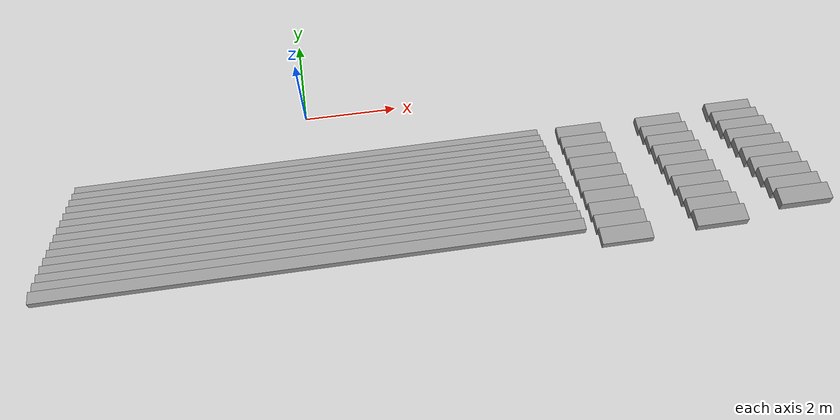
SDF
<sdf version="1.7">
 <world name="default">
  <model name="ground_plane">
   <static>1</static>
   <link name="link">
    <collision name="collision">
     <geometry><plane><normal>0 0 1</normal><size>100 100</size></plane></geometry>
     <surface>
      <contact><collide_bitmask>65535</collide_bitmask></contact>
      <friction><ode><mu>100</mu><mu2>50</mu2></ode></friction>
     </surface>
    </collision>
    <visual name="visual">
     <cast_shadows>0</cast_shadows>
     <geometry><plane><normal>0 0 1</normal><size>100 100</size></plane></geometry>
     <material>
      <script><uri>file://media/materials/scripts/gazebo.material</uri><name>Gazebo/Grey</name></script>
     </material>
    </visual>
   </link>
  </model>
  <model name="Untitled">
   <pose>0.01 -2.3 0 0 -0 0</pose>
   <link name="Stairs_0">
    <visual name="Stairs_0_Visual_0">
     <pose>-0 1.08333 0.075 0 -0 0</pose>
     <geometry><box><size>10 0.233333 0.15</size></box></geometry>
     <material>
      <script><uri>file://media/materials/scripts/gazebo.material</uri><name>Gazebo/Grey</name></script>
      <ambient>1 1 1 1</ambient>
     </material>
     <meta><layer>0</layer></meta>
    </visual>
    <collision name="Stairs_0_Collision_0">
     <geometry><box><size>10 0.233333 0.15</size></box></geometry>
     <pose>-0 1.08333 0.075 0 -0 0</pose>
    </collision>
    <visual name="Stairs_0_Visual_1">
     <pose>-0 0.85 0.225 0 -0 0</pose>
     <geometry><box><size>10 0.233333 0.15</size></box></geometry>
     <material>
      <script><uri>file://media/materials/scripts/gazebo.material</uri><name>Gazebo/Grey</name></script>
      <ambient>1 1 1 1</ambient>
     </material>
     <meta><layer>0</layer></meta>
    </visual>
    <collision name="Stairs_0_Collision_1">
     <geometry><box><size>10 0.233333 0.15</size></box></geometry>
     <pose>-0 0.85 0.225 0 -0 0</pose>
    </collision>
    <visual name="Stairs_0_Visual_2">
     <pose>-0 0.616667 0.375 0 -0 0</pose>
     <geometry><box><size>10 0.233333 0.15</size></box></geometry>
     <material>
      <script><uri>file://media/materials/scripts/gazebo.material</uri><name>Gazebo/Grey</name></script>
      <ambient>1 1 1 1</ambient>
     </material>
     <meta><layer>0</layer></meta>
    </visual>
    <collision name="Stairs_0_Collision_2">
     <geometry><box><size>10 0.233333 0.15</size></box></geometry>
     <pose>-0 0.616667 0.375 0 -0 0</pose>
    </collision>
    <visual name="Stairs_0_Visual_3">
     <pose>-0 0.383333 0.525 0 -0 0</pose>
     <geometry><box><size>10 0.233333 0.15</size></box></geometry>
     <material>
      <script><uri>file://media/materials/scripts/gazebo.material</uri><name>Gazebo/Grey</name></script>
      <ambient>1 1 1 1</ambient>
     </material>
     <meta><layer>0</layer></meta>
    </visual>
    <collision name="Stairs_0_Collision_3">
     <geometry><box><size>10 0.233333 0.15</size></box></geometry>
     <pose>-0 0.383333 0.525 0 -0 0</pose>
    </collision>
    <visual name="Stairs_0_Visual_4">
     <pose>-0 0.15 0.675 0 -0 0</pose>
     <geometry><box><size>10 0.233333 0.15</size></box></geometry>
     <material>
      <script><uri>file://media/materials/scripts/gazebo.material</uri><name>Gazebo/Grey</name></script>
      <ambient>1 1 1 1</ambient>
     </material>
     <meta><layer>0</layer></meta>
    </visual>
    <collision name="Stairs_0_Collision_4">
     <geometry><box><size>10 0.233333 0.15</size></box></geometry>
     <pose>-0 0.15 0.675 0 -0 0</pose>
    </collision>
    <visual name="Stairs_0_Visual_5">
     <pose>-0 -0.083333 0.825 0 -0 0</pose>
     <geometry><box><size>10 0.233333 0.15</size></box></geometry>
     <material>
      <script><uri>file://media/materials/scripts/gazebo.material</uri><name>Gazebo/Grey</name></script>
      <ambient>1 1 1 1</ambient>
     </material>
     <meta><layer>0</layer></meta>
    </visual>
    <collision name="Stairs_0_Collision_5">
     <geometry><box><size>10 0.233333 0.15</size></box></geometry>
     <pose>-0 -0.083333 0.825 0 -0 0</pose>
    </collision>
    <visual name="Stairs_0_Visual_6">
     <pose>-0 -0.316667 0.975 0 -0 0</pose>
     <geometry><box><size>10 0.233333 0.15</size></box></geometry>
     <material>
      <script><uri>file://media/materials/scripts/gazebo.material</uri><name>Gazebo/Grey</name></script>
      <ambient>1 1 1 1</ambient>
     </material>
     <meta><layer>0</layer></meta>
    </visual>
    <collision name="Stairs_0_Collision_6">
     <geometry><box><size>10 0.233333 0.15</size></box></geometry>
     <pose>-0 -0.316667 0.975 0 -0 0</pose>
    </collision>
    <visual name="Stairs_0_Visual_7">
     <pose>-0 -0.55 1.125 0 -0 0</pose>
     <geometry><box><size>10 0.233333 0.15</size></box></geometry>
     <material>
      <script><uri>file://media/materials/scripts/gazebo.material</uri><name>Gazebo/Grey</name></script>
      <ambient>1 1 1 1</ambient>
     </material>
     <meta><layer>0</layer></meta>
    </visual>
    <collision name="Stairs_0_Collision_7">
     <geometry><box><size>10 0.233333 0.15</size></box></geometry>
     <pose>-0 -0.55 1.125 0 -0 0</pose>
    </collision>
    <visual name="Stairs_0_Visual_8">
     <pose>-0 -0.783333 1.275 0 -0 0</pose>
     <geometry><box><size>10 0.233333 0.15</size></box></geometry>
     <material>
      <script><uri>file://media/materials/scripts/gazebo.material</uri><name>Gazebo/Grey</name></script>
      <ambient>1 1 1 1</ambient>
     </material>
     <meta><layer>0</layer></meta>
    </visual>
    <collision name="Stairs_0_Collision_8">
     <geometry><box><size>10 0.233333 0.15</size></box></geometry>
     <pose>-0 -0.783333 1.275 0 -0 0</pose>
    </collision>
    <visual name="Stairs_0_Visual_9">
     <pose>-0 -1.01667 1.425 0 -0 0</pose>
     <geometry><box><size>10 0.233333 0.15</size></box></geometry>
     <material>
      <script><uri>file://media/materials/scripts/gazebo.material</uri><name>Gazebo/Grey</name></script>
      <ambient>1 1 1 1</ambient>
     </material>
     <meta><layer>0</layer></meta>
    </visual>
    <collision name="Stairs_0_Collision_9">
     <geometry><box><size>10 0.233333 0.15</size></box></geometry>
     <pose>-0 -1.01667 1.425 0 -0 0</pose>
    </collision>
    <visual name="Stairs_0_Visual_10">
     <pose>-0 -1.25 1.575 0 -0 0</pose>
     <geometry><box><size>10 0.233333 0.15</size></box></geometry>
     <material>
      <script><uri>file://media/materials/scripts/gazebo.material</uri><name>Gazebo/Grey</name></script>
      <ambient>1 1 1 1</ambient>
     </material>
     <meta><layer>0</layer></meta>
    </visual>
    <collision name="Stairs_0_Collision_10">
     <geometry><box><size>10 0.233333 0.15</size></box></geometry>
     <pose>-0 -1.25 1.575 0 -0 0</pose>
    </collision>
    <visual name="Stairs_0_Visual_11">
     <pose>-0 -1.48333 1.725 0 -0 0</pose>
     <geometry><box><size>10 0.233333 0.15</size></box></geometry>
     <material>
      <script><uri>file://media/materials/scripts/gazebo.material</uri><name>Gazebo/Grey</name></script>
      <ambient>1 1 1 1</ambient>
     </material>
     <meta><layer>0</layer></meta>
    </visual>
    <collision name="Stairs_0_Collision_11">
     <geometry><box><size>10 0.233333 0.15</size></box></geometry>
     <pose>-0 -1.48333 1.725 0 -0 0</pose>
    </collision>
    <visual name="Stairs_0_Visual_12">
     <pose>-0 -1.71667 1.875 0 -0 0</pose>
     <geometry><box><size>10 0.233333 0.15</size></box></geometry>
     <material>
      <script><uri>file://media/materials/scripts/gazebo.material</uri><name>Gazebo/Grey</name></script>
      <ambient>1 1 1 1</ambient>
     </material>
     <meta><layer>0</layer></meta>
    </visual>
    <collision name="Stairs_0_Collision_12">
     <geometry><box><size>10 0.233333 0.15</size></box></geometry>
     <pose>-0 -1.71667 1.875 0 -0 0</pose>
    </collision>
    <visual name="Stairs_0_Visual_13">
     <pose>-0 -1.95 2.025 0 -0 0</pose>
     <geometry><box><size>10 0.233333 0.15</size></box></geometry>
     <material>
      <script><uri>file://media/materials/scripts/gazebo.material</uri><name>Gazebo/Grey</name></script>
      <ambient>1 1 1 1</ambient>
     </material>
     <meta><layer>0</layer></meta>
    </visual>
    <collision name="Stairs_0_Collision_13">
     <geometry><box><size>10 0.233333 0.15</size></box></geometry>
     <pose>-0 -1.95 2.025 0 -0 0</pose>
    </collision>
    <visual name="Stairs_0_Visual_14">
     <pose>-0 -2.18333 2.175 0 -0 0</pose>
     <geometry><box><size>10 0.233333 0.15</size></box></geometry>
     <material>
      <script><uri>file://media/materials/scripts/gazebo.material</uri><name>Gazebo/Grey</name></script>
      <ambient>1 1 1 1</ambient>
     </material>
     <meta><layer>0</layer></meta>
    </visual>
    <collision name="Stairs_0_Collision_14">
     <geometry><box><size>10 0.233333 0.15</size></box></geometry>
     <pose>-0 -2.18333 2.175 0 -0 0</pose>
    </collision>
   </link>
   <static>1</static>
  </model>
  <model name="Untitled_2">
   <pose>4.91779 -2.32141 0 0 -0 0</pose>
   <link name="Stairs_1">
    <visual name="Stairs_1_Visual_0">
     <pose>1.01944 1.03143 0.075 0 -0 0</pose>
     <geometry><box><size>1 0.35 0.15</size></box></geometry>
     <material>
      <script><uri>file://media/materials/scripts/gazebo.material</uri><name>Gazebo/Grey</name></script>
      <ambient>1 1 1 1</ambient>
     </material>
     <meta><layer>0</layer></meta>
    </visual>
    <collision name="Stairs_1_Collision_0">
     <geometry><box><size>1 0.35 0.15</size></box></geometry>
     <pose>1.01944 1.03143 0.075 0 -0 0</pose>
    </collision>
    <visual name="Stairs_1_Visual_1">
     <pose>1.01944 0.681426 0.225 0 -0 0</pose>
     <geometry><box><size>1 0.35 0.15</size></box></geometry>
     <material>
      <script><uri>file://media/materials/scripts/gazebo.material</uri><name>Gazebo/Grey</name></script>
      <ambient>1 1 1 1</ambient>
     </material>
     <meta><layer>0</layer></meta>
    </visual>
    <collision name="Stairs_1_Collision_1">
     <geometry><box><size>1 0.35 0.15</size></box></geometry>
     <pose>1.01944 0.681426 0.225 0 -0 0</pose>
    </collision>
    <visual name="Stairs_1_Visual_2">
     <pose>1.01944 0.331426 0.375 0 -0 0</pose>
     <geometry><box><size>1 0.35 0.15</size></box></geometry>
     <material>
      <script><uri>file://media/materials/scripts/gazebo.material</uri><name>Gazebo/Grey</name></script>
      <ambient>1 1 1 1</ambient>
     </material>
     <meta><layer>0</layer></meta>
    </visual>
    <collision name="Stairs_1_Collision_2">
     <geometry><box><size>1 0.35 0.15</size></box></geometry>
     <pose>1.01944 0.331426 0.375 0 -0 0</pose>
    </collision>
    <visual name="Stairs_1_Visual_3">
     <pose>1.01944 -0.018574 0.525 0 -0 0</pose>
     <geometry><box><size>1 0.35 0.15</size></box></geometry>
     <material>
      <script><uri>file://media/materials/scripts/gazebo.material</uri><name>Gazebo/Grey</name></script>
      <ambient>1 1 1 1</ambient>
     </material>
     <meta><layer>0</layer></meta>
    </visual>
    <collision name="Stairs_1_Collision_3">
     <geometry><box><size>1 0.35 0.15</size></box></geometry>
     <pose>1.01944 -0.018574 0.525 0 -0 0</pose>
    </collision>
    <visual name="Stairs_1_Visual_4">
     <pose>1.01944 -0.368574 0.675 0 -0 0</pose>
     <geometry><box><size>1 0.35 0.15</size></box></geometry>
     <material>
      <script><uri>file://media/materials/scripts/gazebo.material</uri><name>Gazebo/Grey</name></script>
      <ambient>1 1 1 1</ambient>
     </material>
     <meta><layer>0</layer></meta>
    </visual>
    <collision name="Stairs_1_Collision_4">
     <geometry><box><size>1 0.35 0.15</size></box></geometry>
     <pose>1.01944 -0.368574 0.675 0 -0 0</pose>
    </collision>
    <visual name="Stairs_1_Visual_5">
     <pose>1.01944 -0.718574 0.825 0 -0 0</pose>
     <geometry><box><size>1 0.35 0.15</size></box></geometry>
     <material>
      <script><uri>file://media/materials/scripts/gazebo.material</uri><name>Gazebo/Grey</name></script>
      <ambient>1 1 1 1</ambient>
     </material>
     <meta><layer>0</layer></meta>
    </visual>
    <collision name="Stairs_1_Collision_5">
     <geometry><box><size>1 0.35 0.15</size></box></geometry>
     <pose>1.01944 -0.718574 0.825 0 -0 0</pose>
    </collision>
    <visual name="Stairs_1_Visual_6">
     <pose>1.01944 -1.06857 0.975 0 -0 0</pose>
     <geometry><box><size>1 0.35 0.15</size></box></geometry>
     <material>
      <script><uri>file://media/materials/scripts/gazebo.material</uri><name>Gazebo/Grey</name></script>
      <ambient>1 1 1 1</ambient>
     </material>
     <meta><layer>0</layer></meta>
    </visual>
    <collision name="Stairs_1_Collision_6">
     <geometry><box><size>1 0.35 0.15</size></box></geometry>
     <pose>1.01944 -1.06857 0.975 0 -0 0</pose>
    </collision>
    <visual name="Stairs_1_Visual_7">
     <pose>1.01944 -1.41857 1.125 0 -0 0</pose>
     <geometry><box><size>1 0.35 0.15</size></box></geometry>
     <material>
      <script><uri>file://media/materials/scripts/gazebo.material</uri><name>Gazebo/Grey</name></script>
      <ambient>1 1 1 1</ambient>
     </material>
     <meta><layer>0</layer></meta>
    </visual>
    <collision name="Stairs_1_Collision_7">
     <geometry><box><size>1 0.35 0.15</size></box></geometry>
     <pose>1.01944 -1.41857 1.125 0 -0 0</pose>
    </collision>
    <visual name="Stairs_1_Visual_8">
     <pose>1.01944 -1.76857 1.275 0 -0 0</pose>
     <geometry><box><size>1 0.35 0.15</size></box></geometry>
     <material>
      <script><uri>file://media/materials/scripts/gazebo.material</uri><name>Gazebo/Grey</name></script>
      <ambient>1 1 1 1</ambient>
     </material>
     <meta><layer>0</layer></meta>
    </visual>
    <collision name="Stairs_1_Collision_8">
     <geometry><box><size>1 0.35 0.15</size></box></geometry>
     <pose>1.01944 -1.76857 1.275 0 -0 0</pose>
    </collision>
    <visual name="Stairs_1_Visual_9">
     <pose>1.01944 -2.11857 1.425 0 -0 0</pose>
     <geometry><box><size>1 0.35 0.15</size></box></geometry>
     <material>
      <script><uri>file://media/materials/scripts/gazebo.material</uri><name>Gazebo/Grey</name></script>
      <ambient>1 1 1 1</ambient>
     </material>
     <meta><layer>0</layer></meta>
    </visual>
    <collision name="Stairs_1_Collision_9">
     <geometry><box><size>1 0.35 0.15</size></box></geometry>
     <pose>1.01944 -2.11857 1.425 0 -0 0</pose>
    </collision>
   </link>
   <link name="Stairs_3">
    <visual name="Stairs_3_Visual_0">
     <pose>2.79779 1.00359 0.09 0 -0 0</pose>
     <geometry><box><size>1 0.35 0.18</size></box></geometry>
     <material>
      <script><uri>file://media/materials/scripts/gazebo.material</uri><name>Gazebo/Grey</name></script>
      <ambient>1 1 1 1</ambient>
     </material>
     <meta><layer>0</layer></meta>
    </visual>
    <collision name="Stairs_3_Collision_0">
     <geometry><box><size>1 0.35 0.18</size></box></geometry>
     <pose>2.79779 1.00359 0.09 0 -0 0</pose>
    </collision>
    <visual name="Stairs_3_Visual_1">
     <pose>2.79779 0.653588 0.27 0 -0 0</pose>
     <geometry><box><size>1 0.35 0.18</size></box></geometry>
     <material>
      <script><uri>file://media/materials/scripts/gazebo.material</uri><name>Gazebo/Grey</name></script>
      <ambient>1 1 1 1</ambient>
     </material>
     <meta><layer>0</layer></meta>
    </visual>
    <collision name="Stairs_3_Collision_1">
     <geometry><box><size>1 0.35 0.18</size></box></geometry>
     <pose>2.79779 0.653588 0.27 0 -0 0</pose>
    </collision>
    <visual name="Stairs_3_Visual_2">
     <pose>2.79779 0.303588 0.45 0 -0 0</pose>
     <geometry><box><size>1 0.35 0.18</size></box></geometry>
     <material>
      <script><uri>file://media/materials/scripts/gazebo.material</uri><name>Gazebo/Grey</name></script>
      <ambient>1 1 1 1</ambient>
     </material>
     <meta><layer>0</layer></meta>
    </visual>
    <collision name="Stairs_3_Collision_2">
     <geometry><box><size>1 0.35 0.18</size></box></geometry>
     <pose>2.79779 0.303588 0.45 0 -0 0</pose>
    </collision>
    <visual name="Stairs_3_Visual_3">
     <pose>2.79779 -0.046412 0.63 0 -0 0</pose>
     <geometry><box><size>1 0.35 0.18</size></box></geometry>
     <material>
      <script><uri>file://media/materials/scripts/gazebo.material</uri><name>Gazebo/Grey</name></script>
      <ambient>1 1 1 1</ambient>
     </material>
     <meta><layer>0</layer></meta>
    </visual>
    <collision name="Stairs_3_Collision_3">
     <geometry><box><size>1 0.35 0.18</size></box></geometry>
     <pose>2.79779 -0.046412 0.63 0 -0 0</pose>
    </collision>
    <visual name="Stairs_3_Visual_4">
     <pose>2.79779 -0.396412 0.81 0 -0 0</pose>
     <geometry><box><size>1 0.35 0.18</size></box></geometry>
     <material>
      <script><uri>file://media/materials/scripts/gazebo.material</uri><name>Gazebo/Grey</name></script>
      <ambient>1 1 1 1</ambient>
     </material>
     <meta><layer>0</layer></meta>
    </visual>
    <collision name="Stairs_3_Collision_4">
     <geometry><box><size>1 0.35 0.18</size></box></geometry>
     <pose>2.79779 -0.396412 0.81 0 -0 0</pose>
    </collision>
    <visual name="Stairs_3_Visual_5">
     <pose>2.79779 -0.746412 0.99 0 -0 0</pose>
     <geometry><box><size>1 0.35 0.18</size></box></geometry>
     <material>
      <script><uri>file://media/materials/scripts/gazebo.material</uri><name>Gazebo/Grey</name></script>
      <ambient>1 1 1 1</ambient>
     </material>
     <meta><layer>0</layer></meta>
    </visual>
    <collision name="Stairs_3_Collision_5">
     <geometry><box><size>1 0.35 0.18</size></box></geometry>
     <pose>2.79779 -0.746412 0.99 0 -0 0</pose>
    </collision>
    <visual name="Stairs_3_Visual_6">
     <pose>2.79779 -1.09641 1.17 0 -0 0</pose>
     <geometry><box><size>1 0.35 0.18</size></box></geometry>
     <material>
      <script><uri>file://media/materials/scripts/gazebo.material</uri><name>Gazebo/Grey</name></script>
      <ambient>1 1 1 1</ambient>
     </material>
     <meta><layer>0</layer></meta>
    </visual>
    <collision name="Stairs_3_Collision_6">
     <geometry><box><size>1 0.35 0.18</size></box></geometry>
     <pose>2.79779 -1.09641 1.17 0 -0 0</pose>
    </collision>
    <visual name="Stairs_3_Visual_7">
     <pose>2.79779 -1.44641 1.35 0 -0 0</pose>
     <geometry><box><size>1 0.35 0.18</size></box></geometry>
     <material>
      <script><uri>file://media/materials/scripts/gazebo.material</uri><name>Gazebo/Grey</name></script>
      <ambient>1 1 1 1</ambient>
     </material>
     <meta><layer>0</layer></meta>
    </visual>
    <collision name="Stairs_3_Collision_7">
     <geometry><box><size>1 0.35 0.18</size></box></geometry>
     <pose>2.79779 -1.44641 1.35 0 -0 0</pose>
    </collision>
    <visual name="Stairs_3_Visual_8">
     <pose>2.79779 -1.79641 1.53 0 -0 0</pose>
     <geometry><box><size>1 0.35 0.18</size></box></geometry>
     <material>
      <script><uri>file://media/materials/scripts/gazebo.material</uri><name>Gazebo/Grey</name></script>
      <ambient>1 1 1 1</ambient>
     </material>
     <meta><layer>0</layer></meta>
    </visual>
    <collision name="Stairs_3_Collision_8">
     <geometry><box><size>1 0.35 0.18</size></box></geometry>
     <pose>2.79779 -1.79641 1.53 0 -0 0</pose>
    </collision>
    <visual name="Stairs_3_Visual_9">
     <pose>2.79779 -2.14641 1.71 0 -0 0</pose>
     <geometry><box><size>1 0.35 0.18</size></box></geometry>
     <material>
      <script><uri>file://media/materials/scripts/gazebo.material</uri><name>Gazebo/Grey</name></script>
      <ambient>1 1 1 1</ambient>
     </material>
     <meta><layer>0</layer></meta>
    </visual>
    <collision name="Stairs_3_Collision_9">
     <geometry><box><size>1 0.35 0.18</size></box></geometry>
     <pose>2.79779 -2.14641 1.71 0 -0 0</pose>
    </collision>
   </link>
   <link name="Stairs_5">
    <visual name="Stairs_5_Visual_0">
     <pose>4.41779 1.12359 0.1 0 -0 0</pose>
     <geometry><box><size>1 0.35 0.2</size></box></geometry>
     <material>
      <script><uri>file://media/materials/scripts/gazebo.material</uri><name>Gazebo/Grey</name></script>
      <ambient>1 1 1 1</ambient>
     </material>
     <meta><layer>0</layer></meta>
    </visual>
    <collision name="Stairs_5_Collision_0">
     <geometry><box><size>1 0.35 0.2</size></box></geometry>
     <pose>4.41779 1.12359 0.1 0 -0 0</pose>
    </collision>
    <visual name="Stairs_5_Visual_1">
     <pose>4.41779 0.773588 0.3 0 -0 0</pose>
     <geometry><box><size>1 0.35 0.2</size></box></geometry>
     <material>
      <script><uri>file://media/materials/scripts/gazebo.material</uri><name>Gazebo/Grey</name></script>
      <ambient>1 1 1 1</ambient>
     </material>
     <meta><layer>0</layer></meta>
    </visual>
    <collision name="Stairs_5_Collision_1">
     <geometry><box><size>1 0.35 0.2</size></box></geometry>
     <pose>4.41779 0.773588 0.3 0 -0 0</pose>
    </collision>
    <visual name="Stairs_5_Visual_2">
     <pose>4.41779 0.423588 0.5 0 -0 0</pose>
     <geometry><box><size>1 0.35 0.2</size></box></geometry>
     <material>
      <script><uri>file://media/materials/scripts/gazebo.material</uri><name>Gazebo/Grey</name></script>
      <ambient>1 1 1 1</ambient>
     </material>
     <meta><layer>0</layer></meta>
    </visual>
    <collision name="Stairs_5_Collision_2">
     <geometry><box><size>1 0.35 0.2</size></box></geometry>
     <pose>4.41779 0.423588 0.5 0 -0 0</pose>
    </collision>
    <visual name="Stairs_5_Visual_3">
     <pose>4.41779 0.073588 0.7 0 -0 0</pose>
     <geometry><box><size>1 0.35 0.2</size></box></geometry>
     <material>
      <script><uri>file://media/materials/scripts/gazebo.material</uri><name>Gazebo/Grey</name></script>
      <ambient>1 1 1 1</ambient>
     </material>
     <meta><layer>0</layer></meta>
    </visual>
    <collision name="Stairs_5_Collision_3">
     <geometry><box><size>1 0.35 0.2</size></box></geometry>
     <pose>4.41779 0.073588 0.7 0 -0 0</pose>
    </collision>
    <visual name="Stairs_5_Visual_4">
     <pose>4.41779 -0.276412 0.9 0 -0 0</pose>
     <geometry><box><size>1 0.35 0.2</size></box></geometry>
     <material>
      <script><uri>file://media/materials/scripts/gazebo.material</uri><name>Gazebo/Grey</name></script>
      <ambient>1 1 1 1</ambient>
     </material>
     <meta><layer>0</layer></meta>
    </visual>
    <collision name="Stairs_5_Collision_4">
     <geometry><box><size>1 0.35 0.2</size></box></geometry>
     <pose>4.41779 -0.276412 0.9 0 -0 0</pose>
    </collision>
    <visual name="Stairs_5_Visual_5">
     <pose>4.41779 -0.626412 1.1 0 -0 0</pose>
     <geometry><box><size>1 0.35 0.2</size></box></geometry>
     <material>
      <script><uri>file://media/materials/scripts/gazebo.material</uri><name>Gazebo/Grey</name></script>
      <ambient>1 1 1 1</ambient>
     </material>
     <meta><layer>0</layer></meta>
    </visual>
    <collision name="Stairs_5_Collision_5">
     <geometry><box><size>1 0.35 0.2</size></box></geometry>
     <pose>4.41779 -0.626412 1.1 0 -0 0</pose>
    </collision>
    <visual name="Stairs_5_Visual_6">
     <pose>4.41779 -0.976412 1.3 0 -0 0</pose>
     <geometry><box><size>1 0.35 0.2</size></box></geometry>
     <material>
      <script><uri>file://media/materials/scripts/gazebo.material</uri><name>Gazebo/Grey</name></script>
      <ambient>1 1 1 1</ambient>
     </material>
     <meta><layer>0</layer></meta>
    </visual>
    <collision name="Stairs_5_Collision_6">
     <geometry><box><size>1 0.35 0.2</size></box></geometry>
     <pose>4.41779 -0.976412 1.3 0 -0 0</pose>
    </collision>
    <visual name="Stairs_5_Visual_7">
     <pose>4.41779 -1.32641 1.5 0 -0 0</pose>
     <geometry><box><size>1 0.35 0.2</size></box></geometry>
     <material>
      <script><uri>file://media/materials/scripts/gazebo.material</uri><name>Gazebo/Grey</name></script>
      <ambient>1 1 1 1</ambient>
     </material>
     <meta><layer>0</layer></meta>
    </visual>
    <collision name="Stairs_5_Collision_7">
     <geometry><box><size>1 0.35 0.2</size></box></geometry>
     <pose>4.41779 -1.32641 1.5 0 -0 0</pose>
    </collision>
    <visual name="Stairs_5_Visual_8">
     <pose>4.41779 -1.67641 1.7 0 -0 0</pose>
     <geometry><box><size>1 0.35 0.2</size></box></geometry>
     <material>
      <script><uri>file://media/materials/scripts/gazebo.material</uri><name>Gazebo/Grey</name></script>
      <ambient>1 1 1 1</ambient>
     </material>
     <meta><layer>0</layer></meta>
    </visual>
    <collision name="Stairs_5_Collision_8">
     <geometry><box><size>1 0.35 0.2</size></box></geometry>
     <pose>4.41779 -1.67641 1.7 0 -0 0</pose>
    </collision>
    <visual name="Stairs_5_Visual_9">
     <pose>4.41779 -2.02641 1.9 0 -0 0</pose>
     <geometry><box><size>1 0.35 0.2</size></box></geometry>
     <material>
      <script><uri>file://media/materials/scripts/gazebo.material</uri><name>Gazebo/Grey</name></script>
      <ambient>1 1 1 1</ambient>
     </material>
     <meta><layer>0</layer></meta>
    </visual>
    <collision name="Stairs_5_Collision_9">
     <geometry><box><size>1 0.35 0.2</size></box></geometry>
     <pose>4.41779 -2.02641 1.9 0 -0 0</pose>
    </collision>
   </link>
   <static>1</static>
  </model>
 </world>
</sdf>
